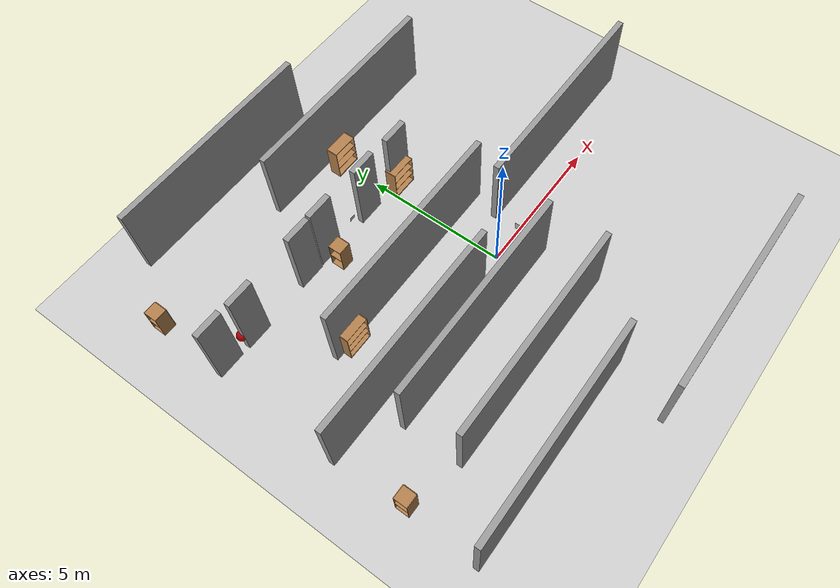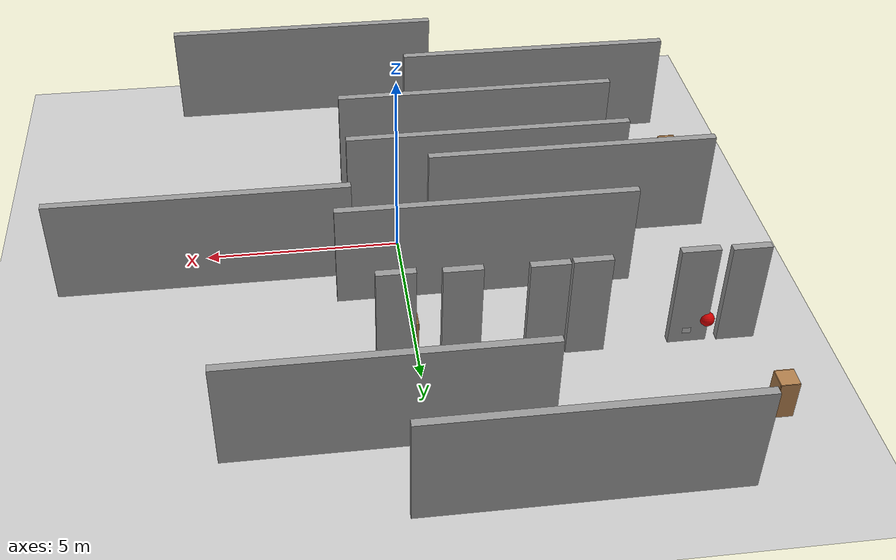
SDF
<sdf version="1.7">
 <world name="default">
  <model name="character">
   <static>1</static>
   <link name="cluedo_character::link">
    <collision name="collision">
     <geometry><plane><normal>0 0 1</normal><size>0.21 0.297</size></plane></geometry>
     <surface><friction><ode><mu>100</mu><mu2>50</mu2></ode></friction></surface>
    </collision>
    <visual name="visual">
     <pose>1.18 0 0.4 1.57 0 -1.57</pose>
     <cast_shadows>0</cast_shadows>
     <geometry><plane><normal>0 0 1</normal><size>0.21 0.297</size></plane></geometry>
     <material>
      <script>
       <uri>model://cluedo_character/materials/scripts</uri>
       <uri>model://cluedo_character/materials/textures</uri>
       <name>Cluedo_character/Image</name>
      </script>
     </material>
    </visual>
    <velocity_decay><linear>0</linear><angular>0</angular></velocity_decay>
   </link>
  </model>
  <light name="sun" type="directional">
   <pose>0 0 10 0 -0 0</pose>
   <diffuse>0.8 0.8 0.8 1</diffuse>
   <specular>0.2 0.2 0.2 1</specular>
   <attenuation>
    <range>1000</range>
    <constant>0.9</constant>
    <linear>0.01</linear>
    <quadratic>0.001</quadratic>
   </attenuation>
   <direction>-0.5 0.1 -0.9</direction>
   <spot><inner_angle>0</inner_angle><outer_angle>0</outer_angle><falloff>0</falloff></spot>
  </light>
  <light name="light_a" type="point">
   <cast_shadows>0</cast_shadows>
   <pose>0 0 1 0 -0 0</pose>
   <diffuse>0.2 0.2 0.2 1</diffuse>
   <specular>1 1 1 1</specular>
   <attenuation>
    <range>1000</range>
    <constant>0.9</constant>
    <linear>0.01</linear>
    <quadratic>0.001</quadratic>
   </attenuation>
   <direction>0 0 -1</direction>
   <spot><inner_angle>0</inner_angle><outer_angle>0</outer_angle><falloff>0</falloff></spot>
  </light>
  <light name="light_b" type="point">
   <cast_shadows>0</cast_shadows>
   <pose>-7 6 1 0 -0 0</pose>
   <diffuse>0.2 0.2 0.2 0.2</diffuse>
   <specular>0.2 0.2 0.2 0.2</specular>
   <attenuation>
    <range>1000</range>
    <constant>0.9</constant>
    <linear>0.01</linear>
    <quadratic>0.001</quadratic>
   </attenuation>
   <direction>0 0 -1</direction>
   <spot><inner_angle>0</inner_angle><outer_angle>0</outer_angle><falloff>0</falloff></spot>
  </light>
  <light name="light_c" type="point">
   <cast_shadows>0</cast_shadows>
   <pose>-2.3 6 1 0 -0 0</pose>
   <diffuse>0.2 0.2 0.2 1</diffuse>
   <specular>1 1 1 1</specular>
   <attenuation>
    <range>1000</range>
    <constant>0.9</constant>
    <linear>0.01</linear>
    <quadratic>0.001</quadratic>
   </attenuation>
   <direction>0 0 -1</direction>
   <spot><inner_angle>0</inner_angle><outer_angle>0</outer_angle><falloff>0</falloff></spot>
  </light>
  <light name="light_d" type="point">
   <cast_shadows>0</cast_shadows>
   <pose>-7 2 1 0 -0 0</pose>
   <diffuse>0.2 0.2 0.2 1</diffuse>
   <specular>1 1 1 1</specular>
   <attenuation>
    <range>1000</range>
    <constant>0.9</constant>
    <linear>0.01</linear>
    <quadratic>0.001</quadratic>
   </attenuation>
   <direction>0 0 -1</direction>
   <spot><inner_angle>0</inner_angle><outer_angle>0</outer_angle><falloff>0</falloff></spot>
  </light>
  <model name="ground_plane">
   <static>1</static>
   <link name="link">
    <collision name="collision">
     <geometry><plane><normal>0 0 1</normal><size>100 100</size></plane></geometry>
     <surface><friction><ode><mu>100</mu><mu2>50</mu2></ode></friction></surface>
    </collision>
    <visual name="visual">
     <cast_shadows>0</cast_shadows>
     <geometry><plane><normal>0 0 1</normal><size>100 100</size></plane></geometry>
     <material>
      <script><uri>file://media/materials/scripts/gazebo.material</uri><name>Gazebo/Grey</name></script>
     </material>
    </visual>
    <velocity_decay><linear>0</linear><angular>0</angular></velocity_decay>
   </link>
  </model>
  <physics type="ode">
   <max_step_size>0.001</max_step_size>
   <real_time_factor>1</real_time_factor>
   <real_time_update_rate>1000</real_time_update_rate>
  </physics>
  <scene><ambient>0.4 0.4 0.4 1</ambient><background>0.7 0.7 0.7 1</background><shadows>1</shadows></scene>
  <spherical_coordinates>
   <surface_model>EARTH_WGS84</surface_model>
   <latitude_deg>0</latitude_deg>
   <longitude_deg>0</longitude_deg>
   <elevation>0</elevation>
   <heading_deg>0</heading_deg>
  </spherical_coordinates>
  <model name="grey_wall_0">
   <static>1</static>
   <link name="link">
    <pose>0 0 1.4 0 -0 0</pose>
    <collision name="collision"><geometry><box><size>7.5 0.2 2.8</size></box></geometry></collision>
    <visual name="visual">
     <cast_shadows>0</cast_shadows>
     <geometry><box><size>7.5 0.2 2.8</size></box></geometry>
     <material>
      <script>
       <uri>model://grey_wall/materials/scripts</uri>
       <uri>model://grey_wall/materials/textures</uri>
       <name>vrc/grey_wall</name>
      </script>
     </material>
    </visual>
    <velocity_decay><linear>0</linear><angular>0</angular></velocity_decay>
   </link>
   <pose>-2.49784 -3 0 0 -0 0</pose>
  </model>
  <model name="grey_wall_1">
   <static>1</static>
   <link name="link">
    <pose>0 0 1.4 0 -0 0</pose>
    <collision name="collision"><geometry><box><size>7.5 0.2 2.8</size></box></geometry></collision>
    <visual name="visual">
     <cast_shadows>0</cast_shadows>
     <geometry><box><size>7.5 0.2 2.8</size></box></geometry>
     <material>
      <script>
       <uri>model://grey_wall/materials/scripts</uri>
       <uri>model://grey_wall/materials/textures</uri>
       <name>vrc/grey_wall</name>
      </script>
     </material>
    </visual>
    <velocity_decay><linear>0</linear><angular>0</angular></velocity_decay>
   </link>
   <pose>-2.53835 -1 0 0 -0 0</pose>
  </model>
  <model name="grey_wall_2">
   <static>1</static>
   <link name="link">
    <pose>0 0 1.4 0 -0 0</pose>
    <collision name="collision"><geometry><box><size>7.5 0.2 2.8</size></box></geometry></collision>
    <visual name="visual">
     <cast_shadows>0</cast_shadows>
     <geometry><box><size>7.5 0.2 2.8</size></box></geometry>
     <material>
      <script>
       <uri>model://grey_wall/materials/scripts</uri>
       <uri>model://grey_wall/materials/textures</uri>
       <name>vrc/grey_wall</name>
      </script>
     </material>
    </visual>
    <velocity_decay><linear>0</linear><angular>0</angular></velocity_decay>
   </link>
   <pose>-4.55904 0 0 0 -0 0</pose>
  </model>
  <model name="grey_wall_3">
   <static>1</static>
   <link name="link">
    <pose>0 0 1.4 0 -0 0</pose>
    <collision name="collision"><geometry><box><size>7.5 0.2 2.8</size></box></geometry></collision>
    <visual name="visual">
     <cast_shadows>0</cast_shadows>
     <geometry><box><size>7.5 0.2 2.8</size></box></geometry>
     <material>
      <script>
       <uri>model://grey_wall/materials/scripts</uri>
       <uri>model://grey_wall/materials/textures</uri>
       <name>vrc/grey_wall</name>
      </script>
     </material>
    </visual>
    <velocity_decay><linear>0</linear><angular>0</angular></velocity_decay>
   </link>
   <pose>5 1 0 0 -0 0</pose>
  </model>
  <model name="grey_wall_4">
   <static>1</static>
   <link name="link">
    <pose>0 0 1.4 0 -0 0</pose>
    <collision name="collision"><geometry><box><size>7.5 0.2 2.8</size></box></geometry></collision>
    <visual name="visual">
     <cast_shadows>0</cast_shadows>
     <geometry><box><size>7.5 0.2 2.8</size></box></geometry>
     <material>
      <script>
       <uri>model://grey_wall/materials/scripts</uri>
       <uri>model://grey_wall/materials/textures</uri>
       <name>vrc/grey_wall</name>
      </script>
     </material>
    </visual>
    <velocity_decay><linear>0</linear><angular>0</angular></velocity_decay>
   </link>
   <pose>-4.5188 -5 0 0 -0 0</pose>
  </model>
  <model name="grey_wall_5">
   <static>1</static>
   <link name="link">
    <pose>0 0 1.4 0 -0 0</pose>
    <collision name="collision"><geometry><box><size>7.5 0.2 2.8</size></box></geometry></collision>
    <visual name="visual">
     <cast_shadows>0</cast_shadows>
     <geometry><box><size>7.5 0.2 2.8</size></box></geometry>
     <material>
      <script>
       <uri>model://grey_wall/materials/scripts</uri>
       <uri>model://grey_wall/materials/textures</uri>
       <name>vrc/grey_wall</name>
      </script>
     </material>
    </visual>
    <velocity_decay><linear>0</linear><angular>0</angular></velocity_decay>
   </link>
   <pose>-2 2 0 0 -0 0</pose>
  </model>
  <model name="cabinet">
   <static>1</static>
   <link name="cabinet_bottom_plate">
    <inertial>
     <pose>0 0 -1 0 -0 0</pose>
     <inertia><ixx>2.05</ixx><ixy>0</ixy><ixz>0</ixz><iyy>2.05</iyy><iyz>0</iyz><izz>2.05</izz></inertia>
     <mass>25</mass>
    </inertial>
    <collision name="cabinet_bottom_plate_geom">
     <pose>0 0 0.01 0 -0 0</pose>
     <geometry><box><size>0.45 0.45 0.02</size></box></geometry>
    </collision>
    <visual name="cabinet_bottom_plate_geom_visual">
     <pose>0 0 0.01 0 -0 0</pose>
     <geometry><box><size>0.45 0.45 0.02</size></box></geometry>
     <material>
      <script><uri>file://media/materials/scripts/gazebo.material</uri><name>Gazebo/Wood</name></script>
     </material>
    </visual>
    <collision name="cabinet_bottom_plate_geom_cabinet_back_plate">
     <pose>0.235 0 0.51 0 -0 0</pose>
     <geometry><box><size>0.02 0.45 1.02</size></box></geometry>
    </collision>
    <visual name="cabinet_bottom_plate_geom_cabinet_back_plate_visual">
     <pose>0.235 0 0.51 0 -0 0</pose>
     <geometry><box><size>0.02 0.45 1.02</size></box></geometry>
     <material>
      <script><uri>file://media/materials/scripts/gazebo.material</uri><name>Gazebo/Wood</name></script>
     </material>
    </visual>
    <collision name="cabinet_bottom_plate_geom_cabinet_left_plate">
     <pose>0 0.235 0.51 0 -0 0</pose>
     <geometry><box><size>0.45 0.02 1.02</size></box></geometry>
    </collision>
    <visual name="cabinet_bottom_plate_geom_cabinet_left_plate_visual">
     <pose>0 0.235 0.51 0 -0 0</pose>
     <geometry><box><size>0.45 0.02 1.02</size></box></geometry>
     <material>
      <script><uri>file://media/materials/scripts/gazebo.material</uri><name>Gazebo/Wood</name></script>
     </material>
    </visual>
    <collision name="cabinet_bottom_plate_geom_cabinet_middle_plate">
     <pose>0 0 0.51 0 -0 0</pose>
     <geometry><box><size>0.45 0.45 0.02</size></box></geometry>
    </collision>
    <visual name="cabinet_bottom_plate_geom_cabinet_middle_plate_visual">
     <pose>0 0 0.51 0 -0 0</pose>
     <geometry><box><size>0.45 0.45 0.02</size></box></geometry>
     <material>
      <script><uri>file://media/materials/scripts/gazebo.material</uri><name>Gazebo/Wood</name></script>
     </material>
    </visual>
    <collision name="cabinet_bottom_plate_geom_cabinet_right_plate">
     <pose>0 -0.235 0.51 0 -0 0</pose>
     <geometry><box><size>0.45 0.02 1.02</size></box></geometry>
    </collision>
    <visual name="cabinet_bottom_plate_geom_cabinet_right_plate_visual">
     <pose>0 -0.235 0.51 0 -0 0</pose>
     <geometry><box><size>0.45 0.02 1.02</size></box></geometry>
     <material>
      <script><uri>file://media/materials/scripts/gazebo.material</uri><name>Gazebo/Wood</name></script>
     </material>
    </visual>
    <collision name="cabinet_bottom_plate_geom_cabinet_top_plate">
     <pose>0 0 1.01 0 -0 0</pose>
     <geometry><box><size>0.45 0.45 0.02</size></box></geometry>
    </collision>
    <visual name="cabinet_bottom_plate_geom_cabinet_top_plate_visual">
     <pose>0 0 1.01 0 -0 0</pose>
     <geometry><box><size>0.45 0.45 0.02</size></box></geometry>
     <material>
      <script><uri>file://media/materials/scripts/gazebo.material</uri><name>Gazebo/Wood</name></script>
     </material>
    </visual>
    <velocity_decay><linear>0</linear><angular>0</angular></velocity_decay>
   </link>
   <pose>-3 4 0 0 -0 0</pose>
  </model>
  <model name="bookshelf">
   <static>1</static>
   <link name="link">
    <inertial><mass>1</mass></inertial>
    <collision name="back">
     <pose>0 0.005 0.6 0 -0 0</pose>
     <geometry><box><size>0.9 0.01 1.2</size></box></geometry>
    </collision>
    <visual name="visual1">
     <pose>0 0.005 0.6 0 -0 0</pose>
     <geometry><box><size>0.9 0.01 1.2</size></box></geometry>
     <material>
      <script><uri>file://media/materials/scripts/gazebo.material</uri><name>Gazebo/Wood</name></script>
     </material>
    </visual>
    <collision name="left_side">
     <pose>0.45 -0.195 0.6 0 -0 0</pose>
     <geometry><box><size>0.02 0.4 1.2</size></box></geometry>
    </collision>
    <visual name="visual2">
     <pose>0.45 -0.195 0.6 0 -0 0</pose>
     <geometry><box><size>0.02 0.4 1.2</size></box></geometry>
     <material>
      <script><uri>file://media/materials/scripts/gazebo.material</uri><name>Gazebo/Wood</name></script>
     </material>
    </visual>
    <collision name="right_side">
     <pose>-0.45 -0.195 0.6 0 -0 0</pose>
     <geometry><box><size>0.02 0.4 1.2</size></box></geometry>
    </collision>
    <visual name="visual3">
     <pose>-0.45 -0.195 0.6 0 -0 0</pose>
     <geometry><box><size>0.02 0.4 1.2</size></box></geometry>
     <material>
      <script><uri>file://media/materials/scripts/gazebo.material</uri><name>Gazebo/Wood</name></script>
     </material>
    </visual>
    <collision name="bottom">
     <pose>0 -0.195 0.03 0 -0 0</pose>
     <geometry><box><size>0.88 0.4 0.06</size></box></geometry>
    </collision>
    <visual name="visual4">
     <pose>0 -0.195 0.03 0 -0 0</pose>
     <geometry><box><size>0.88 0.4 0.06</size></box></geometry>
     <material>
      <script><uri>file://media/materials/scripts/gazebo.material</uri><name>Gazebo/Wood</name></script>
     </material>
    </visual>
    <collision name="top">
     <pose>0 -0.195 1.19 0 -0 0</pose>
     <geometry><box><size>0.88 0.4 0.02</size></box></geometry>
    </collision>
    <visual name="visual5">
     <pose>0 -0.195 1.19 0 -0 0</pose>
     <geometry><box><size>0.88 0.4 0.02</size></box></geometry>
     <material>
      <script><uri>file://media/materials/scripts/gazebo.material</uri><name>Gazebo/Wood</name></script>
     </material>
    </visual>
    <collision name="low_shelf">
     <pose>0 -0.195 0.43 0 -0 0</pose>
     <geometry><box><size>0.88 0.4 0.02</size></box></geometry>
    </collision>
    <visual name="visual6">
     <pose>0 -0.195 0.43 0 -0 0</pose>
     <geometry><box><size>0.88 0.4 0.02</size></box></geometry>
     <material>
      <script><uri>file://media/materials/scripts/gazebo.material</uri><name>Gazebo/Wood</name></script>
     </material>
    </visual>
    <collision name="high_shelf">
     <pose>0 -0.195 0.8 0 -0 0</pose>
     <geometry><box><size>0.88 0.4 0.02</size></box></geometry>
    </collision>
    <visual name="visual7">
     <pose>0 -0.195 0.8 0 -0 0</pose>
     <geometry><box><size>0.88 0.4 0.02</size></box></geometry>
     <material>
      <script><uri>file://media/materials/scripts/gazebo.material</uri><name>Gazebo/Wood</name></script>
     </material>
    </visual>
    <velocity_decay><linear>0</linear><angular>0</angular></velocity_decay>
   </link>
   <pose>0.450204 4.48153 0 0 -0 0</pose>
  </model>
  <model name="grey_wall">
   <static>1</static>
   <link name="link">
    <pose>0 0 1.4 0 -0 0</pose>
    <collision name="collision"><geometry><box><size>7.5 0.2 2.8</size></box></geometry></collision>
    <visual name="visual">
     <cast_shadows>0</cast_shadows>
     <geometry><box><size>7.5 0.2 2.8</size></box></geometry>
     <material>
      <script>
       <uri>model://grey_wall/materials/scripts</uri>
       <uri>model://grey_wall/materials/textures</uri>
       <name>vrc/grey_wall</name>
      </script>
     </material>
    </visual>
    <velocity_decay><linear>0</linear><angular>0</angular></velocity_decay>
   </link>
   <pose>2 -7 0 0 -0 0</pose>
  </model>
  <model name="grey_wall_8">
   <static>1</static>
   <link name="link">
    <pose>0 0 1.4 0 -0 0</pose>
    <collision name="collision"><geometry><box><size>7.5 0.2 2.8</size></box></geometry></collision>
    <visual name="visual">
     <cast_shadows>0</cast_shadows>
     <geometry><box><size>7.5 0.2 2.8</size></box></geometry>
     <material>
      <script>
       <uri>model://grey_wall/materials/scripts</uri>
       <uri>model://grey_wall/materials/textures</uri>
       <name>vrc/grey_wall</name>
      </script>
     </material>
    </visual>
    <velocity_decay><linear>0</linear><angular>0</angular></velocity_decay>
   </link>
   <pose>1 7 0 0 -0 0</pose>
  </model>
  <model name="grey_wall_9">
   <static>1</static>
   <link name="link">
    <pose>0 0 1.4 0 -0 0</pose>
    <collision name="collision"><geometry><box><size>7.5 0.2 2.8</size></box></geometry></collision>
    <visual name="visual">
     <cast_shadows>0</cast_shadows>
     <geometry><box><size>7.5 0.2 2.8</size></box></geometry>
     <material>
      <script>
       <uri>model://grey_wall/materials/scripts</uri>
       <uri>model://grey_wall/materials/textures</uri>
       <name>vrc/grey_wall</name>
      </script>
     </material>
    </visual>
    <velocity_decay><linear>0</linear><angular>0</angular></velocity_decay>
   </link>
   <pose>-3 9 0 0 -0 0</pose>
  </model>
  <model name="cabinet_0">
   <static>1</static>
   <link name="cabinet_bottom_plate">
    <inertial>
     <pose>0 0 -1 0 -0 0</pose>
     <inertia><ixx>2.05</ixx><ixy>0</ixy><ixz>0</ixz><iyy>2.05</iyy><iyz>0</iyz><izz>2.05</izz></inertia>
     <mass>25</mass>
    </inertial>
    <collision name="cabinet_bottom_plate_geom">
     <pose>0 0 0.01 0 -0 0</pose>
     <geometry><box><size>0.45 0.45 0.02</size></box></geometry>
    </collision>
    <visual name="cabinet_bottom_plate_geom_visual">
     <pose>0 0 0.01 0 -0 0</pose>
     <geometry><box><size>0.45 0.45 0.02</size></box></geometry>
     <material>
      <script><uri>file://media/materials/scripts/gazebo.material</uri><name>Gazebo/Wood</name></script>
     </material>
    </visual>
    <collision name="cabinet_bottom_plate_geom_cabinet_back_plate">
     <pose>0.235 0 0.51 0 -0 0</pose>
     <geometry><box><size>0.02 0.45 1.02</size></box></geometry>
    </collision>
    <visual name="cabinet_bottom_plate_geom_cabinet_back_plate_visual">
     <pose>0.235 0 0.51 0 -0 0</pose>
     <geometry><box><size>0.02 0.45 1.02</size></box></geometry>
     <material>
      <script><uri>file://media/materials/scripts/gazebo.material</uri><name>Gazebo/Wood</name></script>
     </material>
    </visual>
    <collision name="cabinet_bottom_plate_geom_cabinet_left_plate">
     <pose>0 0.235 0.51 0 -0 0</pose>
     <geometry><box><size>0.45 0.02 1.02</size></box></geometry>
    </collision>
    <visual name="cabinet_bottom_plate_geom_cabinet_left_plate_visual">
     <pose>0 0.235 0.51 0 -0 0</pose>
     <geometry><box><size>0.45 0.02 1.02</size></box></geometry>
     <material>
      <script><uri>file://media/materials/scripts/gazebo.material</uri><name>Gazebo/Wood</name></script>
     </material>
    </visual>
    <collision name="cabinet_bottom_plate_geom_cabinet_middle_plate">
     <pose>0 0 0.51 0 -0 0</pose>
     <geometry><box><size>0.45 0.45 0.02</size></box></geometry>
    </collision>
    <visual name="cabinet_bottom_plate_geom_cabinet_middle_plate_visual">
     <pose>0 0 0.51 0 -0 0</pose>
     <geometry><box><size>0.45 0.45 0.02</size></box></geometry>
     <material>
      <script><uri>file://media/materials/scripts/gazebo.material</uri><name>Gazebo/Wood</name></script>
     </material>
    </visual>
    <collision name="cabinet_bottom_plate_geom_cabinet_right_plate">
     <pose>0 -0.235 0.51 0 -0 0</pose>
     <geometry><box><size>0.45 0.02 1.02</size></box></geometry>
    </collision>
    <visual name="cabinet_bottom_plate_geom_cabinet_right_plate_visual">
     <pose>0 -0.235 0.51 0 -0 0</pose>
     <geometry><box><size>0.45 0.02 1.02</size></box></geometry>
     <material>
      <script><uri>file://media/materials/scripts/gazebo.material</uri><name>Gazebo/Wood</name></script>
     </material>
    </visual>
    <collision name="cabinet_bottom_plate_geom_cabinet_top_plate">
     <pose>0 0 1.01 0 -0 0</pose>
     <geometry><box><size>0.45 0.45 0.02</size></box></geometry>
    </collision>
    <visual name="cabinet_bottom_plate_geom_cabinet_top_plate_visual">
     <pose>0 0 1.01 0 -0 0</pose>
     <geometry><box><size>0.45 0.45 0.02</size></box></geometry>
     <material>
      <script><uri>file://media/materials/scripts/gazebo.material</uri><name>Gazebo/Wood</name></script>
     </material>
    </visual>
    <velocity_decay><linear>0</linear><angular>0</angular></velocity_decay>
   </link>
   <pose>-8 -2.47022 0 0 -0 0</pose>
  </model>
  <model name="bookshelf_0">
   <static>1</static>
   <link name="link">
    <inertial><mass>1</mass></inertial>
    <collision name="back">
     <pose>0 0.005 0.6 0 -0 0</pose>
     <geometry><box><size>0.9 0.01 1.2</size></box></geometry>
    </collision>
    <visual name="visual1">
     <pose>0 0.005 0.6 0 -0 0</pose>
     <geometry><box><size>0.9 0.01 1.2</size></box></geometry>
     <material>
      <script><uri>file://media/materials/scripts/gazebo.material</uri><name>Gazebo/Wood</name></script>
     </material>
    </visual>
    <collision name="left_side">
     <pose>0.45 -0.195 0.6 0 -0 0</pose>
     <geometry><box><size>0.02 0.4 1.2</size></box></geometry>
    </collision>
    <visual name="visual2">
     <pose>0.45 -0.195 0.6 0 -0 0</pose>
     <geometry><box><size>0.02 0.4 1.2</size></box></geometry>
     <material>
      <script><uri>file://media/materials/scripts/gazebo.material</uri><name>Gazebo/Wood</name></script>
     </material>
    </visual>
    <collision name="right_side">
     <pose>-0.45 -0.195 0.6 0 -0 0</pose>
     <geometry><box><size>0.02 0.4 1.2</size></box></geometry>
    </collision>
    <visual name="visual3">
     <pose>-0.45 -0.195 0.6 0 -0 0</pose>
     <geometry><box><size>0.02 0.4 1.2</size></box></geometry>
     <material>
      <script><uri>file://media/materials/scripts/gazebo.material</uri><name>Gazebo/Wood</name></script>
     </material>
    </visual>
    <collision name="bottom">
     <pose>0 -0.195 0.03 0 -0 0</pose>
     <geometry><box><size>0.88 0.4 0.06</size></box></geometry>
    </collision>
    <visual name="visual4">
     <pose>0 -0.195 0.03 0 -0 0</pose>
     <geometry><box><size>0.88 0.4 0.06</size></box></geometry>
     <material>
      <script><uri>file://media/materials/scripts/gazebo.material</uri><name>Gazebo/Wood</name></script>
     </material>
    </visual>
    <collision name="top">
     <pose>0 -0.195 1.19 0 -0 0</pose>
     <geometry><box><size>0.88 0.4 0.02</size></box></geometry>
    </collision>
    <visual name="visual5">
     <pose>0 -0.195 1.19 0 -0 0</pose>
     <geometry><box><size>0.88 0.4 0.02</size></box></geometry>
     <material>
      <script><uri>file://media/materials/scripts/gazebo.material</uri><name>Gazebo/Wood</name></script>
     </material>
    </visual>
    <collision name="low_shelf">
     <pose>0 -0.195 0.43 0 -0 0</pose>
     <geometry><box><size>0.88 0.4 0.02</size></box></geometry>
    </collision>
    <visual name="visual6">
     <pose>0 -0.195 0.43 0 -0 0</pose>
     <geometry><box><size>0.88 0.4 0.02</size></box></geometry>
     <material>
      <script><uri>file://media/materials/scripts/gazebo.material</uri><name>Gazebo/Wood</name></script>
     </material>
    </visual>
    <collision name="high_shelf">
     <pose>0 -0.195 0.8 0 -0 0</pose>
     <geometry><box><size>0.88 0.4 0.02</size></box></geometry>
    </collision>
    <visual name="visual7">
     <pose>0 -0.195 0.8 0 -0 0</pose>
     <geometry><box><size>0.88 0.4 0.02</size></box></geometry>
     <material>
      <script><uri>file://media/materials/scripts/gazebo.material</uri><name>Gazebo/Wood</name></script>
     </material>
    </visual>
    <velocity_decay><linear>0</linear><angular>0</angular></velocity_decay>
   </link>
   <pose>-5 2 0 0 -0 0</pose>
  </model>
  <model name="grey_wall_small">
   <static>1</static>
   <link name="link">
    <pose>0 0 1.4 0 -0 0</pose>
    <collision name="collision"><geometry><box><size>0.9375 0.2 2.8</size></box></geometry></collision>
    <visual name="visual">
     <cast_shadows>0</cast_shadows>
     <geometry><box><size>0.9375 0.2 2.8</size></box></geometry>
     <material>
      <script>
       <uri>model://grey_wall_small/materials/scripts</uri>
       <uri>model://grey_wall_small/materials/textures</uri>
       <name>vrc/grey_wall_small</name>
      </script>
     </material>
    </visual>
    <velocity_decay><linear>0</linear><angular>0</angular></velocity_decay>
   </link>
   <pose>-3 4.52771 0 0 -0 0</pose>
  </model>
  <model name="grey_wall_small_0">
   <static>1</static>
   <link name="link">
    <pose>0 0 1.4 0 -0 0</pose>
    <collision name="collision"><geometry><box><size>0.9375 0.2 2.8</size></box></geometry></collision>
    <visual name="visual">
     <cast_shadows>0</cast_shadows>
     <geometry><box><size>0.9375 0.2 2.8</size></box></geometry>
     <material>
      <script>
       <uri>model://grey_wall_small/materials/scripts</uri>
       <uri>model://grey_wall_small/materials/textures</uri>
       <name>vrc/grey_wall_small</name>
      </script>
     </material>
    </visual>
    <velocity_decay><linear>0</linear><angular>0</angular></velocity_decay>
   </link>
   <pose>-4 4.49859 0 0 -0 0</pose>
  </model>
  <model name="grey_wall_small_1">
   <static>1</static>
   <link name="link">
    <pose>0 0 1.4 0 -0 0</pose>
    <collision name="collision"><geometry><box><size>0.9375 0.2 2.8</size></box></geometry></collision>
    <visual name="visual">
     <cast_shadows>0</cast_shadows>
     <geometry><box><size>0.9375 0.2 2.8</size></box></geometry>
     <material>
      <script>
       <uri>model://grey_wall_small/materials/scripts</uri>
       <uri>model://grey_wall_small/materials/textures</uri>
       <name>vrc/grey_wall_small</name>
      </script>
     </material>
    </visual>
    <velocity_decay><linear>0</linear><angular>0</angular></velocity_decay>
   </link>
   <pose>0.528907 4.42147 0 0 -0 0</pose>
  </model>
  <model name="grey_wall_small_2">
   <static>1</static>
   <link name="link">
    <pose>0 0 1.4 0 -0 0</pose>
    <collision name="collision"><geometry><box><size>0.9375 0.2 2.8</size></box></geometry></collision>
    <visual name="visual">
     <cast_shadows>0</cast_shadows>
     <geometry><box><size>0.9375 0.2 2.8</size></box></geometry>
     <material>
      <script>
       <uri>model://grey_wall_small/materials/scripts</uri>
       <uri>model://grey_wall_small/materials/textures</uri>
       <name>vrc/grey_wall_small</name>
      </script>
     </material>
    </visual>
    <velocity_decay><linear>0</linear><angular>0</angular></velocity_decay>
   </link>
   <pose>-1 4.48163 0 0 -0 0</pose>
  </model>
  <model name="grey_wall_small_3">
   <static>1</static>
   <link name="link">
    <pose>0 0 1.4 0 -0 0</pose>
    <collision name="collision"><geometry><box><size>0.9375 0.2 2.8</size></box></geometry></collision>
    <visual name="visual">
     <cast_shadows>0</cast_shadows>
     <geometry><box><size>0.9375 0.2 2.8</size></box></geometry>
     <material>
      <script>
       <uri>model://grey_wall_small/materials/scripts</uri>
       <uri>model://grey_wall_small/materials/textures</uri>
       <name>vrc/grey_wall_small</name>
      </script>
     </material>
    </visual>
    <velocity_decay><linear>0</linear><angular>0</angular></velocity_decay>
   </link>
   <pose>-7.74691 4.47565 0 0 -0 0</pose>
  </model>
  <model name="grey_wall_small_4">
   <static>1</static>
   <link name="link">
    <pose>0 0 1.4 0 -0 0</pose>
    <collision name="collision"><geometry><box><size>0.9375 0.2 2.8</size></box></geometry></collision>
    <visual name="visual">
     <cast_shadows>0</cast_shadows>
     <geometry><box><size>0.9375 0.2 2.8</size></box></geometry>
     <material>
      <script>
       <uri>model://grey_wall_small/materials/scripts</uri>
       <uri>model://grey_wall_small/materials/textures</uri>
       <name>vrc/grey_wall_small</name>
      </script>
     </material>
    </visual>
    <velocity_decay><linear>0</linear><angular>0</angular></velocity_decay>
   </link>
   <pose>-6.5409 4.44034 0 0 -0 0</pose>
  </model>
  <model name="red_image">
   <static>1</static>
   <link name="link">
    <collision name="collision">
     <geometry><plane><normal>0 0 1</normal><size>0.21 0.16</size></plane></geometry>
     <surface><friction><ode><mu>100</mu><mu2>50</mu2></ode></friction></surface>
    </collision>
    <visual name="visual">
     <pose>-6.48 4.6 0.4 1.57 0 3.14</pose>
     <cast_shadows>0</cast_shadows>
     <geometry><plane><normal>0 0 1</normal><size>0.21 0.16</size></plane></geometry>
     <material>
      <script>
       <uri>model://red_image/materials/scripts</uri>
       <uri>model://red_image/materials/textures</uri>
       <name>red_image/Image</name>
      </script>
     </material>
    </visual>
    <velocity_decay><linear>0</linear><angular>0</angular></velocity_decay>
   </link>
  </model>
  <model name="green_image">
   <static>1</static>
   <link name="link">
    <collision name="collision">
     <geometry><plane><normal>0 0 1</normal><size>0.21 0.16</size></plane></geometry>
     <surface><friction><ode><mu>100</mu><mu2>50</mu2></ode></friction></surface>
    </collision>
    <visual name="visual">
     <pose>-1.7 4.6 0.4 1.57 0 3.14</pose>
     <cast_shadows>0</cast_shadows>
     <geometry><plane><normal>0 0 1</normal><size>0.21 0.16</size></plane></geometry>
     <material>
      <script>
       <uri>model://green_image/materials/scripts</uri>
       <uri>model://green_image/materials/textures</uri>
       <name>green_image/Image</name>
      </script>
     </material>
    </visual>
    <velocity_decay><linear>0</linear><angular>0</angular></velocity_decay>
   </link>
  </model>
  <model name="bookshelf_1">
   <static>1</static>
   <link name="link">
    <inertial><mass>1</mass></inertial>
    <collision name="back">
     <pose>0 0.005 0.6 0 -0 0</pose>
     <geometry><box><size>0.9 0.01 1.2</size></box></geometry>
    </collision>
    <visual name="visual1">
     <pose>0 0.005 0.6 0 -0 0</pose>
     <geometry><box><size>0.9 0.01 1.2</size></box></geometry>
     <material>
      <script><uri>file://media/materials/scripts/gazebo.material</uri><name>Gazebo/Wood</name></script>
     </material>
    </visual>
    <collision name="left_side">
     <pose>0.45 -0.195 0.6 0 -0 0</pose>
     <geometry><box><size>0.02 0.4 1.2</size></box></geometry>
    </collision>
    <visual name="visual2">
     <pose>0.45 -0.195 0.6 0 -0 0</pose>
     <geometry><box><size>0.02 0.4 1.2</size></box></geometry>
     <material>
      <script><uri>file://media/materials/scripts/gazebo.material</uri><name>Gazebo/Wood</name></script>
     </material>
    </visual>
    <collision name="right_side">
     <pose>-0.45 -0.195 0.6 0 -0 0</pose>
     <geometry><box><size>0.02 0.4 1.2</size></box></geometry>
    </collision>
    <visual name="visual3">
     <pose>-0.45 -0.195 0.6 0 -0 0</pose>
     <geometry><box><size>0.02 0.4 1.2</size></box></geometry>
     <material>
      <script><uri>file://media/materials/scripts/gazebo.material</uri><name>Gazebo/Wood</name></script>
     </material>
    </visual>
    <collision name="bottom">
     <pose>0 -0.195 0.03 0 -0 0</pose>
     <geometry><box><size>0.88 0.4 0.06</size></box></geometry>
    </collision>
    <visual name="visual4">
     <pose>0 -0.195 0.03 0 -0 0</pose>
     <geometry><box><size>0.88 0.4 0.06</size></box></geometry>
     <material>
      <script><uri>file://media/materials/scripts/gazebo.material</uri><name>Gazebo/Wood</name></script>
     </material>
    </visual>
    <collision name="top">
     <pose>0 -0.195 1.19 0 -0 0</pose>
     <geometry><box><size>0.88 0.4 0.02</size></box></geometry>
    </collision>
    <visual name="visual5">
     <pose>0 -0.195 1.19 0 -0 0</pose>
     <geometry><box><size>0.88 0.4 0.02</size></box></geometry>
     <material>
      <script><uri>file://media/materials/scripts/gazebo.material</uri><name>Gazebo/Wood</name></script>
     </material>
    </visual>
    <collision name="low_shelf">
     <pose>0 -0.195 0.43 0 -0 0</pose>
     <geometry><box><size>0.88 0.4 0.02</size></box></geometry>
    </collision>
    <visual name="visual6">
     <pose>0 -0.195 0.43 0 -0 0</pose>
     <geometry><box><size>0.88 0.4 0.02</size></box></geometry>
     <material>
      <script><uri>file://media/materials/scripts/gazebo.material</uri><name>Gazebo/Wood</name></script>
     </material>
    </visual>
    <collision name="high_shelf">
     <pose>0 -0.195 0.8 0 -0 0</pose>
     <geometry><box><size>0.88 0.4 0.02</size></box></geometry>
    </collision>
    <visual name="visual7">
     <pose>0 -0.195 0.8 0 -0 0</pose>
     <geometry><box><size>0.88 0.4 0.02</size></box></geometry>
     <material>
      <script><uri>file://media/materials/scripts/gazebo.material</uri><name>Gazebo/Wood</name></script>
     </material>
    </visual>
    <velocity_decay><linear>0</linear><angular>0</angular></velocity_decay>
   </link>
   <pose>0 6.59557 0 0 -0 0</pose>
  </model>
  <model name="cabinet_1">
   <static>1</static>
   <link name="cabinet_bottom_plate">
    <inertial>
     <pose>0 0 -1 0 -0 0</pose>
     <inertia><ixx>2.05</ixx><ixy>0</ixy><ixz>0</ixz><iyy>2.05</iyy><iyz>0</iyz><izz>2.05</izz></inertia>
     <mass>25</mass>
    </inertial>
    <collision name="cabinet_bottom_plate_geom">
     <pose>0 0 0.01 0 -0 0</pose>
     <geometry><box><size>0.45 0.45 0.02</size></box></geometry>
    </collision>
    <visual name="cabinet_bottom_plate_geom_visual">
     <pose>0 0 0.01 0 -0 0</pose>
     <geometry><box><size>0.45 0.45 0.02</size></box></geometry>
     <material>
      <script><uri>file://media/materials/scripts/gazebo.material</uri><name>Gazebo/Wood</name></script>
     </material>
    </visual>
    <collision name="cabinet_bottom_plate_geom_cabinet_back_plate">
     <pose>0.235 0 0.51 0 -0 0</pose>
     <geometry><box><size>0.02 0.45 1.02</size></box></geometry>
    </collision>
    <visual name="cabinet_bottom_plate_geom_cabinet_back_plate_visual">
     <pose>0.235 0 0.51 0 -0 0</pose>
     <geometry><box><size>0.02 0.45 1.02</size></box></geometry>
     <material>
      <script><uri>file://media/materials/scripts/gazebo.material</uri><name>Gazebo/Wood</name></script>
     </material>
    </visual>
    <collision name="cabinet_bottom_plate_geom_cabinet_left_plate">
     <pose>0 0.235 0.51 0 -0 0</pose>
     <geometry><box><size>0.45 0.02 1.02</size></box></geometry>
    </collision>
    <visual name="cabinet_bottom_plate_geom_cabinet_left_plate_visual">
     <pose>0 0.235 0.51 0 -0 0</pose>
     <geometry><box><size>0.45 0.02 1.02</size></box></geometry>
     <material>
      <script><uri>file://media/materials/scripts/gazebo.material</uri><name>Gazebo/Wood</name></script>
     </material>
    </visual>
    <collision name="cabinet_bottom_plate_geom_cabinet_middle_plate">
     <pose>0 0 0.51 0 -0 0</pose>
     <geometry><box><size>0.45 0.45 0.02</size></box></geometry>
    </collision>
    <visual name="cabinet_bottom_plate_geom_cabinet_middle_plate_visual">
     <pose>0 0 0.51 0 -0 0</pose>
     <geometry><box><size>0.45 0.45 0.02</size></box></geometry>
     <material>
      <script><uri>file://media/materials/scripts/gazebo.material</uri><name>Gazebo/Wood</name></script>
     </material>
    </visual>
    <collision name="cabinet_bottom_plate_geom_cabinet_right_plate">
     <pose>0 -0.235 0.51 0 -0 0</pose>
     <geometry><box><size>0.45 0.02 1.02</size></box></geometry>
    </collision>
    <visual name="cabinet_bottom_plate_geom_cabinet_right_plate_visual">
     <pose>0 -0.235 0.51 0 -0 0</pose>
     <geometry><box><size>0.45 0.02 1.02</size></box></geometry>
     <material>
      <script><uri>file://media/materials/scripts/gazebo.material</uri><name>Gazebo/Wood</name></script>
     </material>
    </visual>
    <collision name="cabinet_bottom_plate_geom_cabinet_top_plate">
     <pose>0 0 1.01 0 -0 0</pose>
     <geometry><box><size>0.45 0.45 0.02</size></box></geometry>
    </collision>
    <visual name="cabinet_bottom_plate_geom_cabinet_top_plate_visual">
     <pose>0 0 1.01 0 -0 0</pose>
     <geometry><box><size>0.45 0.45 0.02</size></box></geometry>
     <material>
      <script><uri>file://media/materials/scripts/gazebo.material</uri><name>Gazebo/Wood</name></script>
     </material>
    </visual>
    <velocity_decay><linear>0</linear><angular>0</angular></velocity_decay>
   </link>
   <pose>-8 7 0 0 -0 0</pose>
  </model>
  <gravity>0 0 -9.8</gravity>
  <magnetic_field>6e-06 2.3e-05 -4.2e-05</magnetic_field>
  <atmosphere type="adiabatic"/>
  <model name="unit_sphere_red_circle">
   <link name="link">
    <inertial>
     <mass>0.0452663</mass>
     <inertia>
      <ixx>0.000574927</ixx>
      <ixy>0</ixy>
      <ixz>0</ixz>
      <iyy>0.000574927</iyy>
      <iyz>0</iyz>
      <izz>0.000574927</izz>
     </inertia>
    </inertial>
    <pose>2.83497 0.432408 0 0 -0 0</pose>
    <visual name="visual">
     <geometry><sphere><radius>0.178192</radius></sphere></geometry>
     <material>
      <script><name>Gazebo/Grey</name><uri>file://media/materials/scripts/gazebo.material</uri></script>
      <shader type="pixel"><normal_map>__default__</normal_map></shader>
      <ambient>0.8 0 0 1</ambient>
      <diffuse>0.8 0 0 1</diffuse>
      <specular>0.8 0 0 1</specular>
      <emissive>0.8 0 0 1</emissive>
     </material>
    </visual>
    <collision name="collision">
     <geometry><sphere><radius>0.178192</radius></sphere></geometry>
     <surface>
      <friction>
       <ode><mu>1</mu><mu2>1</mu2><fdir1>0 0 0</fdir1><slip1>0</slip1><slip2>0</slip2></ode>
       <torsional>
        <coefficient>1</coefficient>
        <patch_radius>0</patch_radius>
        <surface_radius>0</surface_radius>
        <use_patch_radius>1</use_patch_radius>
        <ode><slip>0</slip></ode>
       </torsional>
      </friction>
      <bounce><restitution_coefficient>0</restitution_coefficient><threshold>1e+06</threshold></bounce>
      <contact>
       <collide_without_contact>0</collide_without_contact>
       <collide_without_contact_bitmask>1</collide_without_contact_bitmask>
       <collide_bitmask>1</collide_bitmask>
       <ode>
        <soft_cfm>0</soft_cfm>
        <soft_erp>0.2</soft_erp>
        <kp>1e+13</kp>
        <kd>1</kd>
        <max_vel>0.01</max_vel>
        <min_depth>0</min_depth>
       </ode>
       <bullet>
        <split_impulse>1</split_impulse>
        <split_impulse_penetration_threshold>-0.01</split_impulse_penetration_threshold>
        <soft_cfm>0</soft_cfm>
        <soft_erp>0.2</soft_erp>
        <kp>1e+13</kp>
        <kd>1</kd>
       </bullet>
      </contact>
     </surface>
    </collision>
   </link>
   <static>0</static>
   <pose>-9.81426 4.0723 0.701203 0.040856 0.02617 0.004896</pose>
  </model>
  <model name="unit_sphere_red_green">
   <link name="link">
    <inertial>
     <mass>0.0452663</mass>
     <inertia>
      <ixx>0.00057493</ixx>
      <ixy>0</ixy>
      <ixz>0</ixz>
      <iyy>0.00057493</iyy>
      <iyz>0</iyz>
      <izz>0.00057493</izz>
     </inertia>
    </inertial>
    <pose>2.83497 0.432408 -0 0 -0 0</pose>
    <visual name="visual">
     <geometry><sphere><radius>0.178192</radius></sphere></geometry>
     <material>
      <script><name>Gazebo/Grey</name><uri>file://media/materials/scripts/gazebo.material</uri></script>
      <shader type="pixel"><normal_map>__default__</normal_map></shader>
      <ambient>0 0.824 0.086 1</ambient>
      <diffuse>0.051 0.824 0.086 1</diffuse>
      <specular>0 0.824 0.086 1</specular>
      <emissive>0 0.824 0.086 1</emissive>
     </material>
    </visual>
    <collision name="collision">
     <geometry><sphere><radius>0.178192</radius></sphere></geometry>
     <surface>
      <friction>
       <ode><mu>1</mu><mu2>1</mu2><fdir1>0 0 0</fdir1><slip1>0</slip1><slip2>0</slip2></ode>
       <torsional>
        <coefficient>1</coefficient>
        <patch_radius>0</patch_radius>
        <surface_radius>0</surface_radius>
        <use_patch_radius>1</use_patch_radius>
        <ode><slip>0</slip></ode>
       </torsional>
      </friction>
      <bounce><restitution_coefficient>0</restitution_coefficient><threshold>1e+06</threshold></bounce>
      <contact>
       <collide_without_contact>0</collide_without_contact>
       <collide_without_contact_bitmask>1</collide_without_contact_bitmask>
       <collide_bitmask>1</collide_bitmask>
       <ode>
        <soft_cfm>0</soft_cfm>
        <soft_erp>0.2</soft_erp>
        <kp>1e+13</kp>
        <kd>1</kd>
        <max_vel>0.01</max_vel>
        <min_depth>0</min_depth>
       </ode>
       <bullet>
        <split_impulse>1</split_impulse>
        <split_impulse_penetration_threshold>-0.01</split_impulse_penetration_threshold>
        <soft_cfm>0</soft_cfm>
        <soft_erp>0.2</soft_erp>
        <kp>1e+13</kp>
        <kd>1</kd>
       </bullet>
      </contact>
     </surface>
    </collision>
   </link>
   <static>0</static>
   <pose>-2.03812 4.08221 0.29509 0.040856 0.02617 0.004896</pose>
  </model>
 </world>
</sdf>
